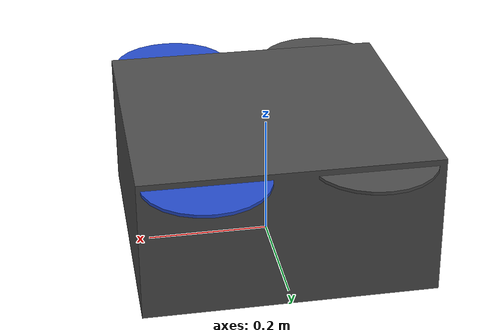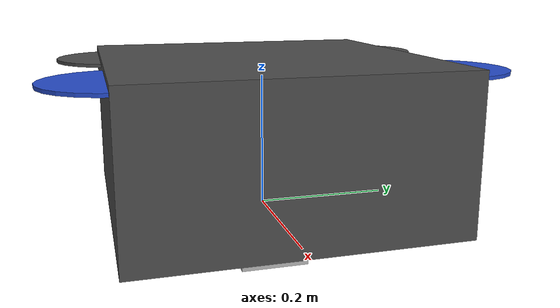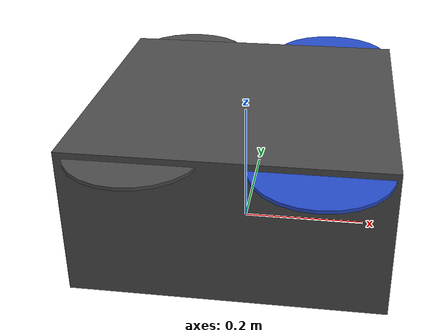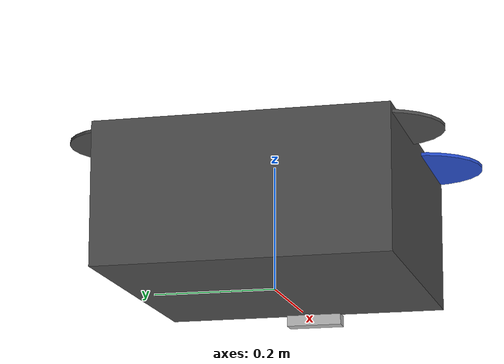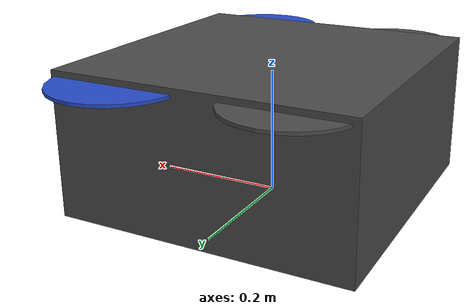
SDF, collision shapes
<?xml version='1.0'?>
<sdf version="1.9">
  <model name="iris_depth">
    <include merge="true">
      <uri>model://iris_with_standoffs</uri>
    </include>

    <!-- OAK-D Lite Camera -->
    <include merge='true'>
      <uri>model://OakD-Lite</uri>
      <!-- Posição: X para frente, Y=0 (centro), Z ligeiramente abaixo ou ao nível do corpo -->
      <pose>0.15 0 -0.02 0 1.5708 0</pose>
    </include>

    <joint name="CameraJoint" type="fixed">
      <parent>base_link</parent> <!-- Do iris_with_standoffs (merged) -->
      <child>camera_link</child> <!-- Assume que OakD-Lite (merged) fornece este link -->
      <pose relative_to="base_link">0.15 0 -0.02 0 0 0</pose>
      <axis>
        <xyz>0 0 1</xyz> <!-- Arbitrário para junta fixa -->
      </axis>
    </joint>

    <!-- Plugins -->
    <plugin filename="gz-sim-joint-state-publisher-system"
      name="gz::sim::systems::JointStatePublisher">
    </plugin>

    <plugin
      filename="gz-sim-odometry-publisher-system"
      name="gz::sim::systems::OdometryPublisher">
      <odom_frame>odom</odom_frame>
      <robot_base_frame>base_link</robot_base_frame>
      <dimensions>3</dimensions>
    </plugin>

    <plugin filename="gz-sim-lift-drag-system"
        name="gz::sim::systems::LiftDrag">
      <a0>0.3</a0>
      <alpha_stall>1.4</alpha_stall>
      <cla>4.2500</cla>
      <cda>0.10</cda>
      <cma>0.0</cma>
      <cla_stall>-0.025</cla_stall>
      <cda_stall>0.0</cda_stall>
      <cma_stall>0.0</cma_stall>
      <area>0.002</area>
      <air_density>1.2041</air_density>
      <cp>0.084 0 0</cp>
      <forward>0 1 0</forward>
      <upward>0 0 1</upward>
      <link_name>rotor_0</link_name>
    </plugin>
    <plugin filename="gz-sim-lift-drag-system"
        name="gz::sim::systems::LiftDrag">
      <a0>0.3</a0>
      <alpha_stall>1.4</alpha_stall>
      <cla>4.2500</cla>
      <cda>0.10</cda>
      <cma>0.0</cma>
      <cla_stall>-0.025</cla_stall>
      <cda_stall>0.0</cda_stall>
      <cma_stall>0.0</cma_stall>
      <area>0.002</area>
      <air_density>1.2041</air_density>
      <cp>-0.084 0 0</cp>
      <forward>0 -1 0</forward>
      <upward>0 0 1</upward>
      <link_name>rotor_0</link_name>
    </plugin>

    <plugin filename="gz-sim-lift-drag-system"
        name="gz::sim::systems::LiftDrag">
      <a0>0.3</a0>
      <alpha_stall>1.4</alpha_stall>
      <cla>4.2500</cla>
      <cda>0.10</cda>
      <cma>0.0</cma>
      <cla_stall>-0.025</cla_stall>
      <cda_stall>0.0</cda_stall>
      <cma_stall>0.0</cma_stall>
      <area>0.002</area>
      <air_density>1.2041</air_density>
      <cp>0.084 0 0</cp>
      <forward>0 1 0</forward>
      <upward>0 0 1</upward>
      <link_name>rotor_1</link_name>
    </plugin>
    <plugin filename="gz-sim-lift-drag-system"
        name="gz::sim::systems::LiftDrag">
      <a0>0.3</a0>
      <alpha_stall>1.4</alpha_stall>
      <cla>4.2500</cla>
      <cda>0.10</cda>
      <cma>0.0</cma>
      <cla_stall>-0.025</cla_stall>
      <cda_stall>0.0</cda_stall>
      <cma_stall>0.0</cma_stall>
      <area>0.002</area>
      <air_density>1.2041</air_density>
      <cp>-0.084 0 0</cp>
      <forward>0 -1 0</forward>
      <upward>0 0 1</upward>
      <link_name>rotor_1</link_name>
    </plugin>

    <plugin filename="gz-sim-lift-drag-system"
        name="gz::sim::systems::LiftDrag">
      <a0>0.3</a0>
      <alpha_stall>1.4</alpha_stall>
      <cla>4.2500</cla>
      <cda>0.10</cda>
      <cma>0.0</cma>
      <cla_stall>-0.025</cla_stall>
      <cda_stall>0.0</cda_stall>
      <cma_stall>0.0</cma_stall>
      <area>0.002</area>
      <air_density>1.2041</air_density>
      <cp>0.084 0 0</cp>
      <forward>0 -1 0</forward>
      <upward>0 0 1</upward>
      <link_name>rotor_2</link_name>
    </plugin>
    <plugin filename="gz-sim-lift-drag-system"
        name="gz::sim::systems::LiftDrag">
      <a0>0.3</a0>
      <alpha_stall>1.4</alpha_stall>
      <cla>4.2500</cla>
      <cda>0.10</cda>
      <cma>0.0</cma>
      <cla_stall>-0.025</cla_stall>
      <cda_stall>0.0</cda_stall>
      <cma_stall>0.0</cma_stall>
      <area>0.002</area>
      <air_density>1.2041</air_density>
      <cp>-0.084 0 0</cp>
      <forward>0 1 0</forward>
      <upward>0 0 1</upward>
      <link_name>rotor_2</link_name>
    </plugin>

    <plugin filename="gz-sim-lift-drag-system"
        name="gz::sim::systems::LiftDrag">
      <a0>0.3</a0>
      <alpha_stall>1.4</alpha_stall>
      <cla>4.2500</cla>
      <cda>0.10</cda>
      <cma>0.0</cma>
      <cla_stall>-0.025</cla_stall>
      <cda_stall>0.0</cda_stall>
      <cma_stall>0.0</cma_stall>
      <area>0.002</area>
      <air_density>1.2041</air_density>
      <cp>0.084 0 0</cp>
      <forward>0 -1 0</forward>
      <upward>0 0 1</upward>
      <link_name>rotor_3</link_name>
    </plugin>
    <plugin filename="gz-sim-lift-drag-system"
        name="gz::sim::systems::LiftDrag">
      <a0>0.3</a0>
      <alpha_stall>1.4</alpha_stall>
      <cla>4.2500</cla>
      <cda>0.10</cda>
      <cma>0.0</cma>
      <cla_stall>-0.025</cla_stall>
      <cda_stall>0.0</cda_stall>
      <cma_stall>0.0</cma_stall>
      <area>0.002</area>
      <air_density>1.2041</air_density>
      <cp>-0.084 0 0</cp>
      <forward>0 1 0</forward>
      <upward>0 0 1</upward>
      <link_name>rotor_3</link_name>
    </plugin>

    <plugin filename="gz-sim-apply-joint-force-system"
      name="gz::sim::systems::ApplyJointForce">
      <joint_name>rotor_0_joint</joint_name>
    </plugin>
    <plugin filename="gz-sim-apply-joint-force-system"
      name="gz::sim::systems::ApplyJointForce">
      <joint_name>rotor_1_joint</joint_name>
    </plugin>
    <plugin filename="gz-sim-apply-joint-force-system"
      name="gz::sim::systems::ApplyJointForce">
      <joint_name>rotor_2_joint</joint_name>
    </plugin>
    <plugin filename="gz-sim-apply-joint-force-system"
      name="gz::sim::systems::ApplyJointForce">
      <joint_name>rotor_3_joint</joint_name>
    </plugin>

    <plugin filename="gz-sim-linearbatteryplugin-system"
      name="gz::sim::systems::LinearBatteryPlugin">
      <battery_name>lipo_3500mAh</battery_name>
      <fix_issue_225>true</fix_issue_225>
      <open_circuit_voltage_constant_coef>12.6</open_circuit_voltage_constant_coef>
      <open_circuit_voltage_linear_coef>-2.7</open_circuit_voltage_linear_coef>
      <capacity>3.5</capacity>
      <voltage>12.6</voltage>
      <initial_charge>3.5</initial_charge>
      <power_load>200.0</power_load>
      <start_draining>false</start_draining>
    </plugin>

    <plugin name="ArduPilotPlugin"
      filename="ArduPilotPlugin">
      <fdm_addr>127.0.0.1</fdm_addr>
      <fdm_port_in>9002</fdm_port_in>
      <connectionTimeoutMaxCount>5</connectionTimeoutMaxCount>
      <lock_step>1</lock_step>
      <modelXYZToAirplaneXForwardZDown degrees="true">0 0 0 180 0 0</modelXYZToAirplaneXForwardZDown>
      <gazeboXYZToNED degrees="true">0 0 0 180 0 90</gazeboXYZToNED>

      <!-- Sensors -->
      <imuName>imu_link::imu_sensor</imuName>

      <!-- Control channels -->
      <!--
          incoming control command [0, 1]
          so offset it by 0 to get [0, 1]
          and divide max target by 1.
          offset = 0
          multiplier = 838 max rpm / 1 = 838
        -->
      <control channel="0">
        <jointName>rotor_0_joint</jointName>
        <useForce>1</useForce>
        <multiplier>838</multiplier>
        <offset>0</offset>
        <servo_min>1100</servo_min>
        <servo_max>1900</servo_max>
        <type>VELOCITY</type>
        <p_gain>0.20</p_gain>
        <i_gain>0</i_gain>
        <d_gain>0</d_gain>
        <i_max>0</i_max>
        <i_min>0</i_min>
        <cmd_max>2.5</cmd_max>
        <cmd_min>-2.5</cmd_min>
        <controlVelocitySlowdownSim>1</controlVelocitySlowdownSim>
      </control>

      <control channel="1">
        <jointName>rotor_1_joint</jointName>
        <useForce>1</useForce>
        <multiplier>838</multiplier>
        <offset>0</offset>
        <servo_min>1100</servo_min>
        <servo_max>1900</servo_max>
        <type>VELOCITY</type>
        <p_gain>0.20</p_gain>
        <i_gain>0</i_gain>
        <d_gain>0</d_gain>
        <i_max>0</i_max>
        <i_min>0</i_min>
        <cmd_max>2.5</cmd_max>
        <cmd_min>-2.5</cmd_min>
        <controlVelocitySlowdownSim>1</controlVelocitySlowdownSim>
      </control>

      <control channel="2">
        <jointName>rotor_2_joint</jointName>
        <useForce>1</useForce>
        <multiplier>-838</multiplier>
        <offset>0</offset>
        <servo_min>1100</servo_min>
        <servo_max>1900</servo_max>
        <type>VELOCITY</type>
        <p_gain>0.20</p_gain>
        <i_gain>0</i_gain>
        <d_gain>0</d_gain>
        <i_max>0</i_max>
        <i_min>0</i_min>
        <cmd_max>2.5</cmd_max>
        <cmd_min>-2.5</cmd_min>
        <controlVelocitySlowdownSim>1</controlVelocitySlowdownSim>
      </control>

      <control channel="3">
        <jointName>rotor_3_joint</jointName>
        <useForce>1</useForce>
        <multiplier>-838</multiplier>
        <offset>0</offset>
        <servo_min>1100</servo_min>
        <servo_max>1900</servo_max>
        <type>VELOCITY</type>
        <p_gain>0.20</p_gain>
        <i_gain>0</i_gain>
        <d_gain>0</d_gain>
        <i_max>0</i_max>
        <i_min>0</i_min>
        <cmd_max>2.5</cmd_max>
        <cmd_min>-2.5</cmd_min>
        <controlVelocitySlowdownSim>1</controlVelocitySlowdownSim>
      </control>

    </plugin>
  </model>
</sdf>

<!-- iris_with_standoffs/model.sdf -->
<sdf version='1.6'>
  <model name='iris'>
    <pose>0 0 0.194923 0 0 0</pose>
    <link name='base_link'>
      <velocity_decay>
        <linear>0.0</linear>
        <angular>0.0</angular>
      </velocity_decay>
      <inertial>
        <pose>0 0 0 0 0 0</pose>
        <mass>1.5</mass>
        <inertia>
          <ixx>0.008</ixx>
          <ixy>0</ixy>
          <ixz>0</ixz>
          <iyy>0.015</iyy>
          <iyz>0</iyz>
          <izz>0.017</izz>
        </inertia>
      </inertial>
      <collision name='base_link_collision'>
        <pose>0 0 -0.08 0 0 0</pose>
        <geometry>
          <box>
            <size>0.47 0.47 0.23</size>
          </box>
        </geometry>
        <surface>
          <contact>
            <ode>
              <max_vel>100.0</max_vel>
              <min_depth>0.001</min_depth>
            </ode>
          </contact>
          <friction>
            <ode>
              <mu>1.0</mu>
              <mu2>1.0</mu2>
            </ode>
          </friction>
        </surface>
      </collision>
      <visual name='base_link_visual'>
        <geometry>
          <mesh>
            <uri>model://../model_source/models/iris_with_standoffs/meshes/iris.dae</uri>
          </mesh>
        </geometry>
        <material>
          <script>
            <name>Gazebo/DarkGrey</name>
          </script>
        </material>
      </visual>

      <visual name='front_left_leg_visual'>
        <pose>0.123 0.22 -0.11 0 0 0</pose>
        <geometry>
          <cylinder>
            <radius>0.005</radius>
            <length>0.17</length>
          </cylinder>
        </geometry>
        <material>
          <script>
            <name>Gazebo/FlatBlack</name>
            <uri>file://media/materials/scripts/gazebo.material</uri>
          </script>
        </material>
      </visual>
      <visual name='front_right_leg_visual'>
        <pose>0.123 -0.22 -0.11 0 0 0</pose>
        <geometry>
          <cylinder>
            <radius>0.005</radius>
            <length>0.17</length>
          </cylinder>
        </geometry>
        <material>
          <script>
            <name>Gazebo/FlatBlack</name>
            <uri>file://media/materials/scripts/gazebo.material</uri>
          </script>
        </material>
      </visual>
      <visual name='rear_left_leg_visual'>
        <pose>-0.140 0.21 -0.11 0 0 0</pose>
        <geometry>
          <cylinder>
            <radius>0.005</radius>
            <length>0.17</length>
          </cylinder>
        </geometry>
        <material>
          <script>
            <name>Gazebo/FlatBlack</name>
            <uri>file://media/materials/scripts/gazebo.material</uri>
          </script>
        </material>
      </visual>
      <visual name='rear_right_leg_visual'>
        <pose>-0.140 -0.21 -0.11 0 0 0</pose>
        <geometry>
          <cylinder>
            <radius>0.005</radius>
            <length>0.17</length>
          </cylinder>
        </geometry>
        <material>
          <script>
            <name>Gazebo/FlatBlack</name>
            <uri>file://media/materials/scripts/gazebo.material</uri>
          </script>
        </material>
      </visual>
    </link>
    <link name='iris/ground_truth/odometry_sensorgt_link'>
      <pose>0 0 0 0 -0 0</pose>
      <inertial>
        <pose>0 0 0 0 -0 0</pose>
        <mass>0.15</mass>
        <inertia>
          <ixx>0.0001</ixx>
          <ixy>0</ixy>
          <ixz>0</ixz>
          <iyy>0.0002</iyy>
          <iyz>0</iyz>
          <izz>0.0002</izz>
        </inertia>
      </inertial>
    </link>
    <joint name='iris/ground_truth/odometry_sensorgt_joint' type='revolute'>
      <child>iris/ground_truth/odometry_sensorgt_link</child>
      <parent>base_link</parent>
      <axis>
        <xyz>0 0 1</xyz>
        <limit>
          <lower>0</lower>
          <upper>0</upper>
          <effort>0</effort>
          <velocity>0</velocity>
        </limit>
        <dynamics>
          <damping>1.0</damping>
        </dynamics>
        <use_parent_model_frame>1</use_parent_model_frame>
      </axis>
      <physics>
        <ode>
          <implicit_spring_damper>1</implicit_spring_damper>
        </ode>
      </physics>
    </joint>
    <link name='iris/imu_link'>
      <inertial>
        <pose>0 0 0 0 0 0</pose>
        <mass>0.15</mass>
        <inertia>
          <ixx>0.00001</ixx>
          <ixy>0</ixy>
          <ixz>0</ixz>
          <iyy>0.00002</iyy>
          <iyz>0</iyz>
          <izz>0.00002</izz>
        </inertia>
      </inertial>
      <sensor name="imu_sensor" type="imu">
        <pose>0 0 0 3.141593 0 0</pose>
        <always_on>1</always_on>
        <update_rate>1000.0</update_rate>
      </sensor>
    </link>
    <joint name='iris/imu_joint' type='revolute'>
      <child>iris/imu_link</child>
      <parent>base_link</parent>
      <axis>
        <xyz>0 0 1</xyz>
        <limit>
          <lower>0</lower>
          <upper>0</upper>
          <effort>0</effort>
          <velocity>0</velocity>
        </limit>
        <dynamics>
          <damping>1.0</damping>
        </dynamics>
        <use_parent_model_frame>1</use_parent_model_frame>
      </axis>
      <physics>
        <ode>
          <implicit_spring_damper>1</implicit_spring_damper>
        </ode>
      </physics>
    </joint>
    <link name='rotor_0'>
      <pose>0.13 -0.22 0.023 0 -0 0</pose>
      <inertial>
        <pose>0 0 0 0 -0 0</pose>
        <mass>0.025</mass>
        <inertia>
          <ixx>9.75e-06</ixx>
          <ixy>0</ixy>
          <ixz>0</ixz>
          <iyy>0.000166704</iyy>
          <iyz>0</iyz>
          <izz>0.000167604</izz>
        </inertia>
      </inertial>
      <collision name='rotor_0_collision'>
        <pose>0 0 0 0 -0 0</pose>
        <geometry>
          <cylinder>
            <length>0.005</length>
            <radius>0.1</radius>
          </cylinder>
        </geometry>
        <surface>
          <contact>
            <ode/>
          </contact>
          <friction>
            <ode/>
          </friction>
        </surface>
      </collision>
      <visual name='rotor_0_visual'>
        <pose>0 0 0 0 -0 0</pose>
        <geometry>
          <mesh>
            <scale>1 1 1</scale>
            <uri>model://../model_source/models/iris_with_standoffs/meshes/iris_prop_ccw.dae</uri>
          </mesh>
        </geometry>
        <material>
          <script>
            <name>Gazebo/Blue</name>
            <uri>__default__</uri>
          </script>
        </material>
      </visual>
      <gravity>1</gravity>
      <velocity_decay/>
      <self_collide>0</self_collide>
    </link>
    <joint name='rotor_0_joint' type='revolute'>
      <child>rotor_0</child>
      <parent>base_link</parent>
      <axis>
        <xyz>0 0 1</xyz>
        <limit>
          <lower>-1e+16</lower>
          <upper>1e+16</upper>
        </limit>
        <dynamics>
          <damping>0.004</damping>
        </dynamics>
        <use_parent_model_frame>1</use_parent_model_frame>
      </axis>
      <physics>
        <ode>
          <implicit_spring_damper>1</implicit_spring_damper>
        </ode>
      </physics>
    </joint>
    <link name='rotor_1'>
      <pose>-0.13 0.2 0.023 0 -0 0</pose>
      <inertial>
        <pose>0 0 0 0 -0 0</pose>
        <mass>0.025</mass>
        <inertia>
          <ixx>9.75e-06</ixx>
          <ixy>0</ixy>
          <ixz>0</ixz>
          <iyy>0.000166704</iyy>
          <iyz>0</iyz>
          <izz>0.000167604</izz>
        </inertia>
      </inertial>
      <collision name='rotor_1_collision'>
        <pose>0 0 0 0 -0 0</pose>
        <geometry>
          <cylinder>
            <length>0.005</length>
            <radius>0.1</radius>
          </cylinder>
        </geometry>
        <surface>
          <contact>
            <ode/>
          </contact>
          <friction>
            <ode/>
          </friction>
        </surface>
      </collision>
      <visual name='rotor_1_visual'>
        <pose>0 0 0 0 -0 0</pose>
        <geometry>
          <mesh>
            <scale>1 1 1</scale>
            <uri>model://../model_source/models/iris_with_standoffs/meshes/iris_prop_ccw.dae</uri>
          </mesh>
        </geometry>
        <material>
          <script>
            <name>Gazebo/DarkGrey</name>
            <uri>__default__</uri>
          </script>
        </material>
      </visual>
      <gravity>1</gravity>
      <velocity_decay/>
      <self_collide>0</self_collide>
    </link>
    <joint name='rotor_1_joint' type='revolute'>
      <child>rotor_1</child>
      <parent>base_link</parent>
      <axis>
        <xyz>0 0 1</xyz>
        <limit>
          <lower>-1e+16</lower>
          <upper>1e+16</upper>
        </limit>
        <dynamics>
          <damping>0.004</damping>
        </dynamics>
        <use_parent_model_frame>1</use_parent_model_frame>
      </axis>
      <physics>
        <ode>
          <implicit_spring_damper>1</implicit_spring_damper>
        </ode>
      </physics>
    </joint>
    <link name='rotor_2'>
      <pose>0.13 0.22 0.023 0 -0 0</pose>
      <inertial>
        <pose>0 0 0 0 -0 0</pose>
        <mass>0.025</mass>
        <inertia>
          <ixx>9.75e-06</ixx>
          <ixy>0</ixy>
          <ixz>0</ixz>
          <iyy>0.000166704</iyy>
          <iyz>0</iyz>
          <izz>0.000167604</izz>
        </inertia>
      </inertial>
      <collision name='rotor_2_collision'>
        <pose>0 0 0 0 -0 0</pose>
        <geometry>
          <cylinder>
            <length>0.005</length>
            <radius>0.1</radius>
          </cylinder>
        </geometry>
        <surface>
          <contact>
            <ode/>
          </contact>
          <friction>
            <ode/>
          </friction>
        </surface>
      </collision>
      <visual name='rotor_2_visual'>
        <pose>0 0 0 0 -0 0</pose>
        <geometry>
          <mesh>
            <scale>1 1 1</scale>
            <uri>model://../model_source/models/iris_with_standoffs/meshes/iris_prop_cw.dae</uri>
          </mesh>
        </geometry>
        <material>
          <script>
            <name>Gazebo/Blue</name>
            <uri>__default__</uri>
          </script>
        </material>
      </visual>
      <gravity>1</gravity>
      <velocity_decay/>
      <self_collide>0</self_collide>
    </link>
    <joint name='rotor_2_joint' type='revolute'>
      <child>rotor_2</child>
      <parent>base_link</parent>
      <axis>
        <xyz>0 0 1</xyz>
        <limit>
          <lower>-1e+16</lower>
          <upper>1e+16</upper>
        </limit>
        <dynamics>
          <damping>0.004</damping>
        </dynamics>
        <use_parent_model_frame>1</use_parent_model_frame>
      </axis>
      <physics>
        <ode>
          <implicit_spring_damper>1</implicit_spring_damper>
        </ode>
      </physics>
    </joint>
    <link name='rotor_3'>
      <pose>-0.13 -0.2 0.023 0 -0 0</pose>
      <inertial>
        <pose>0 0 0 0 -0 0</pose>
        <mass>0.025</mass>
        <inertia>
          <ixx>9.75e-06</ixx>
          <ixy>0</ixy>
          <ixz>0</ixz>
          <iyy>0.000166704</iyy>
          <iyz>0</iyz>
          <izz>0.000167604</izz>
        </inertia>
      </inertial>
      <collision name='rotor_3_collision'>
        <pose>0 0 0 0 -0 0</pose>
        <geometry>
          <cylinder>
            <length>0.005</length>
            <radius>0.1</radius>
          </cylinder>
        </geometry>
        <surface>
          <contact>
            <ode/>
          </contact>
          <friction>
            <ode/>
          </friction>
        </surface>
      </collision>
      <visual name='rotor_3_visual'>
        <pose>0 0 0 0 -0 0</pose>
        <geometry>
          <mesh>
            <scale>1 1 1</scale>
            <uri>model://../model_source/models/iris_with_standoffs/meshes/iris_prop_cw.dae</uri>
          </mesh>
        </geometry>
        <material>
          <script>
            <name>Gazebo/DarkGrey</name>
            <uri>__default__</uri>
          </script>
        </material>
      </visual>
      <gravity>1</gravity>
      <velocity_decay/>
      <self_collide>0</self_collide>
    </link>
    <joint name='rotor_3_joint' type='revolute'>
      <child>rotor_3</child>
      <parent>base_link</parent>
      <axis>
        <xyz>0 0 1</xyz>
        <limit>
          <lower>-1e+16</lower>
          <upper>1e+16</upper>
        </limit>
        <dynamics>
          <damping>0.004</damping>
        </dynamics>
        <use_parent_model_frame>1</use_parent_model_frame>
      </axis>
      <physics>
        <ode>
          <implicit_spring_damper>1</implicit_spring_damper>
        </ode>
      </physics>
    </joint>
    <static>0</static>
  </model>
</sdf>

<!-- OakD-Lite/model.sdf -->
<sdf version='1.9'>
  <model name='OakD-Lite'>
    <pose>0 0 0 0 0 0</pose>
    <self_collide>false</self_collide>
    <static>false</static>
    <link name="camera_link">
      <inertial>
        <pose>0.00358 -0.03 .014 0 0 0</pose>
        <mass>0.061</mass>
        <inertia>
          <ixx>0.00000460804</ixx>
          <ixy>0</ixy>
          <ixz>0</ixz>
          <iyy>0.00000055421</iyy>
          <iyz>0</iyz>
          <izz>0.00000436519</izz>
        </inertia>
      </inertial>
      <visual name="OakD-Lite/visual">
        <pose>0 0 0 0 0 0</pose>
        <geometry>
          <mesh>
            <scale>1 1 1</scale>
            <uri>model://OakD-Lite/meshes/OakDLite.dae</uri>
          </mesh>
        </geometry>
      </visual>
      <collision name="OakD-Lite/collision">
        <pose>0.00358 -0.03 .014 0 0 0</pose>
        <geometry>
          <box>
            <size>0.0175 0.091 0.028</size>
          </box>
        </geometry>
      </collision>

      <!-- Left RGB Camera -->
      <sensor name="left_rgb_camera" type="camera">
        <pose>0.01233 -0.06 .01878 0 0 0</pose> <!-- Adjusted Y for left camera -->
        <camera>
          <horizontal_fov>1.274</horizontal_fov> <!-- Match depth camera FOV -->
          <image>
            <width>640</width>
            <height>480</height>
          </image>
          <clip>
            <near>0.1</near>
            <far>100</far>
          </clip>
        </camera>
        <always_on>1</always_on>
        <update_rate>30</update_rate>
        <visualize>true</visualize>
        <topic>stereo_camera/left/image_raw</topic>
      </sensor>

      <!-- Right RGB Camera -->
      <sensor name="right_rgb_camera" type="camera">
        <pose>0.01233 0.0 .01878 0 0 0</pose> <!-- Adjusted Y for right camera -->
        <camera>
          <horizontal_fov>1.204</horizontal_fov>
          <image>
            <width>640</width>
            <height>480</height>
          </image>
          <clip>
            <near>0.1</near>
            <far>100</far>
          </clip>
        </camera>
        <always_on>1</always_on>
        <update_rate>30</update_rate>
        <visualize>true</visualize>
        <topic>stereo_camera/right/image_raw</topic>
      </sensor>

      <!-- Existing Depth Camera -->
      <sensor name="StereoOV7251" type="depth_camera">
        <pose>0.01233 -0.03 .01878 0 0 0</pose> <!-- Original pose, represents depth output origin -->
        <camera>
          <horizontal_fov>1.274</horizontal_fov>
          <image>
            <width>640</width>
            <height>480</height>
            <format>R_FLOAT32</format>
          </image>
          <clip>
            <near>0.2</near>
            <far>19.1</far>
          </clip>
        </camera>
        <always_on>1</always_on>
        <update_rate>30</update_rate>
        <visualize>true</visualize>
        <topic>depth_camera</topic> <!-- This topic is for the processed depth image -->
      </sensor>

      <gravity>true</gravity>
      <velocity_decay/>
    </link>
  </model>
</sdf>
